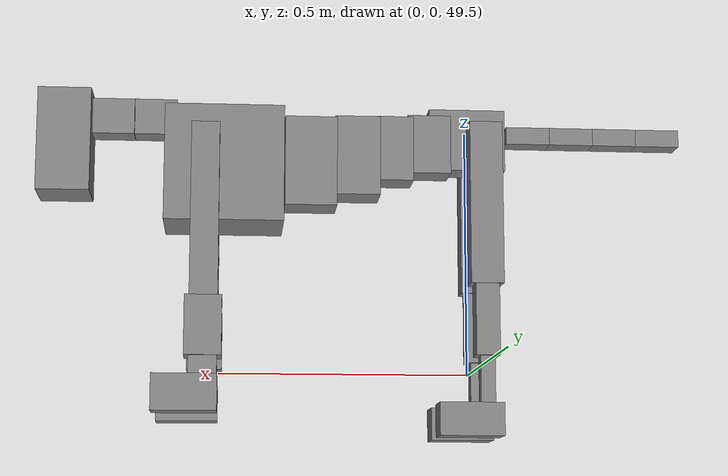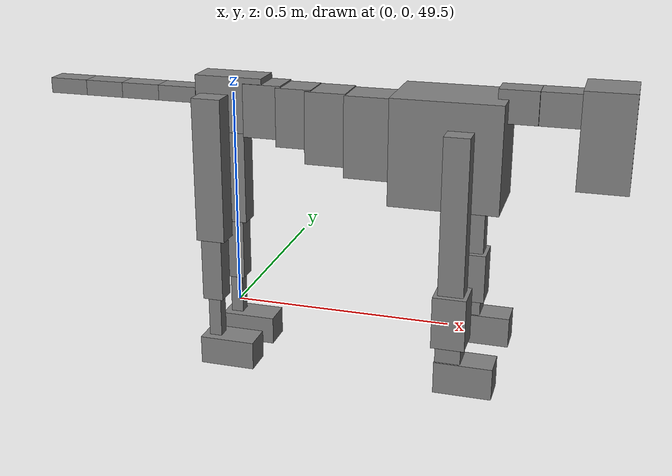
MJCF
<mujoco model="dog">

    <default>
        <joint armature="0.02" stiffness="1" damping="0.2" limited="true"/>
        <geom condim="3" friction="1 0.05 0.05" margin="0.01"/>
        <motor ctrllimited="true" ctrlrange="-1.0 1.0" forcelimited="true" gear="50"/>
    </default>

    <compiler inertiafromgeom="true" angle="radian"/>

    <option timestep="0.016" iterations="50" tolerance="1e-10" solver="Newton" jacobian="dense" cone="pyramidal"/>

    <size nconmax="20000" njmax="60000" nstack="5000000"/>
    <visual>
        <map force="0.1" zfar="30"/>
        <rgba haze="0.15 0.25 0.35 1"/>
        <quality shadowsize="2048"/>
        <global offwidth="800" offheight="800"/>
    </visual>

    <asset>
        <texture type="skybox" builtin="gradient" rgb1="0.3 0.5 0.7" rgb2="0 0 0" width="512" height="512"/>
        <texture name="texplane" type="2d" builtin="checker" rgb1=".2 .3 .4" rgb2=".1 0.15 0.2" width="512" height="512"
                 mark="cross" markrgb=".8 .8 .8"/>
        <texture name="texgeom" type="cube" builtin="flat" mark="cross" width="127" height="1278" rgb1="0.8 0.6 0.4"
                 rgb2="0.8 0.6 0.4" markrgb="1 1 1" random="0.01"/>

        <material name="matplane" reflectance="0.3" texture="texplane" texrepeat="1 1" texuniform="true"/>
        <material name="matgeom" texture="texgeom" texuniform="true" rgba="0.8 0.6 .4 1"/>
    </asset>

    <worldbody>
        <geom name="floor" pos="0 0 0" size="0 0 .25" type="plane" material="matplane" condim="3"/>

        <light directional="false" diffuse=".2 .2 .2" specular="0 0 0" pos="0 0 5" dir="0 0 -1" castshadow="false"/>
        <light mode="targetbodycom" target="torso" directional="false" diffuse=".8 .8 .8" specular="0.3 0.3 0.3"
               pos="0 0 4.0" dir="0 0 -1"/>

        <body name="root" pos="0 0 50">
            <freejoint name="root_1"/>
            <geom type="box" pos="0 0 -0.02" size="0.0774  0.0358  0.063" density="2030"/>

            <body name="spine1" pos="0.054 0 0">
                <joint name="spine1_y" axis="0 1 0" range="0 0.7" limited="true"/>
                <geom type="box" pos="0.02375 0 -0.03" size="0.04375  0.0375  0.05985" density="2030"/>

                <body name="spine2" pos="0.0612 0 0">
                    <joint name="spine2_y" axis="0 1 0" range="-0.15 0.15" limited="true"/>
                    <geom type="box" pos="0.03555  0  -0.04" size="0.04055  0.039  0.06615" density="2030"/>

                    <body name="spine3" pos="0.0730 0 0">
                        <joint name="spine3_y" axis="0 1 0" range="-0.15 0.15" limited="true"/>
                        <geom type="box" pos="0.03555  0  -0.057" size="0.04555  0.0445  0.081" density="2030"/>

                        <body name="spine4" pos="0.0780 0 0">
                            <joint name="spine4_y" axis="0 1 0" range="-0.15 0.15" limited="true"/>
                            <geom type="box" pos="0.05265  0  -0.07" size="0.05265  0.045  0.09135" density="2030"/>

                            <body name="torso" pos="0.1082 0 0">
                                <joint name="torso_y" axis="0 1 0" range="-0.15 0.15" limited="true"/>
                                <geom type="box" pos="0.11925  0  -0.085" size="0.11925  0.085  0.11745"
                                      density="2030"/>

                                <body name="neck1" pos="0.2160  0   0.0180">
                                    <joint name="neck1_y" axis="0 1 0" range="-1.2  -1" limited="true"/>
                                    <geom type="box" pos="0.0423  0  0" size="0.0423  0.03  0.036" density="2325"/>

                                    <body name="neck2" pos="0.0853  0  0">
                                        <joint name="neck2_y" axis="0 1 0" range="0.1  0" limited="true"/>
                                        <geom type="box" pos="0.0423  0  0" size="0.0423  0.03  0.036" density="2325"/>

                                        <body name="head" pos="0.0853  0  0">
                                            <joint name="head_y" axis="0 1 0" range="-0.3  -0.2" limited="true"/>
                                            <geom type="box" pos="0.0531  0  -0.055" size="0.0531  0.06  0.1044"
                                                  density="4030"/>

                                        </body>
                                    </body>
                                </body>

                                <body name="front_shoulder" pos="0.156  0   -0.0480">
                                    <joint name="front_shoulder_y" axis="0 1 0" range="-1 1.5" limited="true"/>
                                    <geom type="box" pos="0 0.13 -0.1583" size="0.0275  0.0235  0.1849" density="1158"/>
                                    <geom type="box" pos="0 -0.13 -0.1583" size="0.0275  0.0235  0.1849"
                                          density="1158"/>

                                    <body name="front_elbow" pos="0  0  -0.3166">
                                        <joint name="front_elbow_y" axis="0 1 0" range="-2 0" limited="true"/>
                                        <geom type="box" pos="0 0.13 -0.0579" size="0.0360  0.0368  0.0579"
                                              density="1081"/>
                                        <geom type="box" pos="0 -0.13 -0.0579" size="0.0360  0.0368  0.0579"
                                              density="1081"/>

                                        <body name="front_wrist" pos="0  0  -0.1158">
                                            <joint name="front_wrist_y" axis="0 1 0" range="-0.2 0" limited="true"/>
                                            <geom type="box" pos="0 0.13 -0.0249" size="0.0274  0.0304  0.0380"
                                                  density="1664"/>
                                            <geom type="box" pos="0 -0.13 -0.0249" size="0.0274  0.0304  0.0380"
                                                  density="1664"/>

                                            <body name="front_finger_end" pos="0  0  -0.0498">
                                                <joint name="front_finger_y" axis="0 1 0" range="-0.4 1"
                                                       limited="true"/>
                                                <geom type="box" pos="0.0343  0.13  -0.0204"
                                                      size="0.0628  0.0343  0.0354" density="1515"/>
                                                <geom type="box" pos="0.0343  -0.13  -0.0204"
                                                      size="0.0628  0.0343  0.0354" density="1515"/>

                                            </body>

                                        </body>
                                    </body>
                                </body>

                            </body>
                        </body>
                    </body>
                </body>
            </body>

            <body name="back_hip" pos="-0.03 0 -0.018">
                <joint name="back_hip_y" axis="0 1 0" range="-1.5 0.3" limited="true"/>
                <geom type="box" pos="0 0.07 -0.1416" size="0.0330  0.0259  0.1644" density="1154"/>
                <geom type="box" pos="0 -0.07 -0.1416" size="0.0330  0.0259  0.1644" density="1154"/>

                <body name="back_knee" pos="0  0  -0.2832">
                    <joint name="back_knee_y" axis="0 1 0" range="0 2.8" limited="true"/>
                    <geom type="box" pos="0 0.07 -0.0754" size="0.0237  0.0234  0.0909" density="1227"/>
                    <geom type="box" pos="0 -0.07 -0.0754" size="0.0237  0.0234  0.0909" density="1227"/>

                    <body name="back_ankle" pos="0  0  -0.1508">
                        <joint name="back_ankle_y" axis="0 1 0" range="-2.2 0" limited="true"/>
                        <geom type="box" pos="0 0.07 -0.0621" size="0.0145  0.0145  0.0733" density="1284"/>
                        <geom type="box" pos="0 -0.07 -0.0621" size="0.0145  0.0145  0.0733" density="1284"/>

                        <body name="back_toe_end" pos="0  0  -0.1242">
                            <joint name="back_toe_y" axis="0 1 0" range="-0.4 1" limited="true"/>
                            <geom type="box" pos="0.0348  0.07  -0.0177" size="0.0638  0.0348  0.0327" density="1515"/>
                            <geom type="box" pos="0.0348  -0.07  -0.0177" size="0.0638  0.0348  0.0327" density="1515"/>

                        </body>
                    </body>
                </body>
            </body>

            <body name="tail1" pos="-0.074 0 -0.006">
                <joint name="tail1_y" axis="0 1 0" range="-0.2 0.2" limited="true"/>
                <geom type="box" pos="-0.0536  0  0" size="0.045  0.025  0.0175" density="1587"/>

                <body name="tail2" pos="-0.09 0 0">
                    <joint name="tail2_y" axis="0 1 0" range="-0.2 0.2" limited="true"/>
                    <geom type="box" pos="-0.0536  0  0" size="0.045  0.025  0.0175" density="1587"/>

                    <body name="tail3" pos="-0.09 0 0">
                        <joint name="tail3_y" axis="0 1 0" range="-0.2 0.2" limited="true"/>
                        <geom type="box" pos="-0.0536  0  0" size="0.045  0.025  0.0175" density="1587"/>

                        <body name="tail4" pos="-0.09 0 0">
                            <joint name="tail4_y" axis="0 1 0" range="-0.2 0.2" limited="true"/>
                            <geom type="box" pos="-0.0536  0  0" size="0.045  0.025  0.0175" density="1587"/>

                        </body>
                    </body>
                </body>
            </body>
        </body>
    </worldbody>

    <actuator>
        <motor joint="spine1_y" forcerange="-150 150     "/>
        <motor joint="spine2_y" forcerange="-150 150     "/>
        <motor joint="spine3_y" forcerange="-150 150     "/>
        <motor joint="spine4_y" forcerange="-150 150     "/>
        <motor joint="torso_y" forcerange="-150 150     "/>
        <motor joint="neck1_y" forcerange="-100 100       "/>
        <motor joint="neck2_y" forcerange="-100 100       "/>
        <motor joint="head_y" forcerange="-150 150       "/>
        <motor joint="front_shoulder_y" forcerange="-127.35 129.31"/>
        <motor joint="front_elbow_y" forcerange="-179.97 187.81"/>
        <motor joint="front_wrist_y" forcerange="-123.78 119.34"/>
        <motor joint="front_finger_y" forcerange="-81.68 61.00"/>
        <motor joint="back_hip_y" forcerange="-335.69 209.44"/>
        <motor joint="back_knee_y" forcerange="-332.19 208.08"/>
        <motor joint="back_angle_y" forcerange="-65.68 66.31"/>
        <motor joint="back_toe_y" forcerange="-76.63 121.97"/>
        <motor joint="tail1_y" forcerange="-50 50     "/>
        <motor joint="tail2_y" forcerange="-50 50     "/>
        <motor joint="tail3_y" forcerange="-50 50     "/>
        <motor joint="tail4_y" forcerange="-50 50     "/>
    </actuator>
</mujoco>
